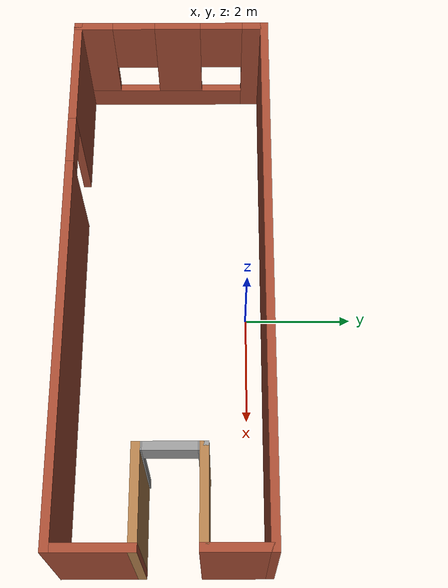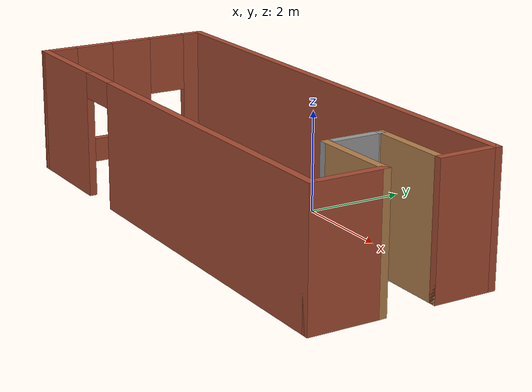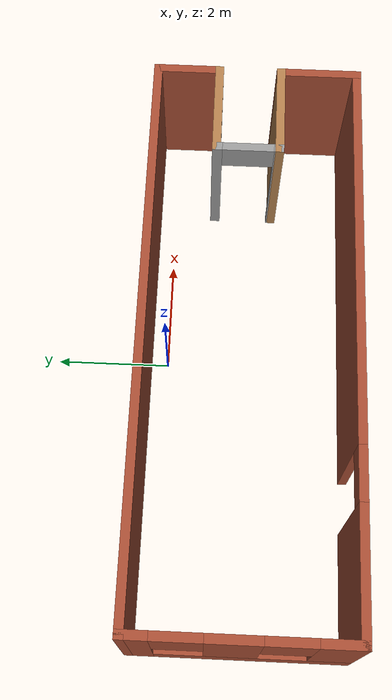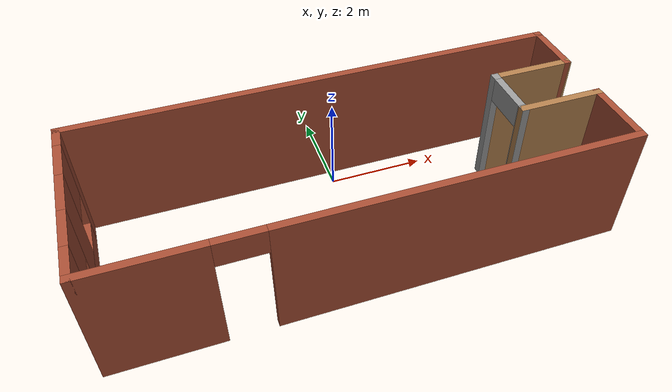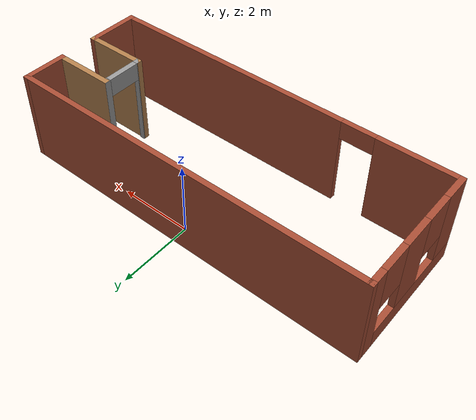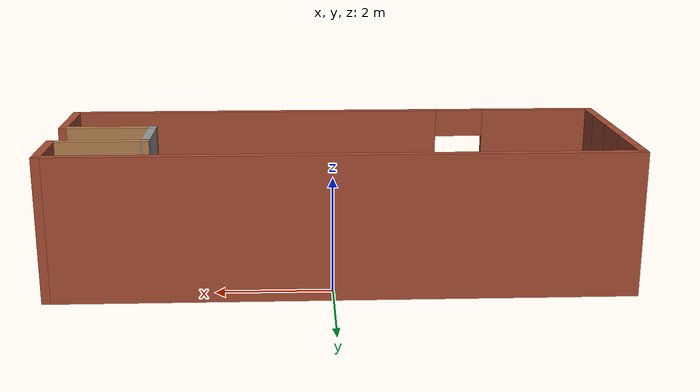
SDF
<?xml version='1.0'?>
<sdf version='1.7'>
  <model name='Untitled'>
    <pose>-0.155 -1.405 0 0 -0 0</pose>
    <link name='Wall_0'>
      <pose>-0 -1.775 0 0 -0 0</pose>
      <visual name='Wall_0_Visual_0'>
        <pose>-3.92104 0 1.25 0 -0 0</pose>
        <geometry>
          <box>
            <size>2.15792 0.15 2.5</size>
          </box>
        </geometry>
        <material>
          <script>
            <uri>file://media/materials/scripts/gazebo.material</uri>
            <name>Gazebo/Bricks</name>
          </script>
          <ambient>0.996078 0.47451 0.0196078 1</ambient>
        </material>
        <meta>
          <layer>0</layer>
        </meta>
      </visual>
      <collision name='Wall_0_Collision_0'>
        <geometry>
          <box>
            <size>2.15792 0.15 2.5</size>
          </box>
        </geometry>
        <pose>-3.92104 0 1.25 0 -0 0</pose>
      </collision>
      <visual name='Wall_0_Visual_1'>
        <pose>1.52896 0 1.25 0 -0 0</pose>
        <geometry>
          <box>
            <size>6.94208 0.15 2.5</size>
          </box>
        </geometry>
        <material>
          <script>
            <uri>file://media/materials/scripts/gazebo.material</uri>
            <name>Gazebo/Bricks</name>
          </script>
          <ambient>0.996078 0.47451 0.0196078 1</ambient>
        </material>
        <meta>
          <layer>0</layer>
        </meta>
      </visual>
      <collision name='Wall_0_Collision_1'>
        <geometry>
          <box>
            <size>6.94208 0.15 2.5</size>
          </box>
        </geometry>
        <pose>1.52896 0 1.25 0 -0 0</pose>
      </collision>
      <visual name='Wall_0_Visual_2'>
        <pose>-2.39208 0 2.25 0 -0 0</pose>
        <geometry>
          <box>
            <size>0.9 0.15 0.5</size>
          </box>
        </geometry>
        <material>
          <script>
            <uri>file://media/materials/scripts/gazebo.material</uri>
            <name>Gazebo/Bricks</name>
          </script>
          <ambient>0.996078 0.47451 0.0196078 1</ambient>
        </material>
        <meta>
          <layer>0</layer>
        </meta>
      </visual>
      <collision name='Wall_0_Collision_2'>
        <geometry>
          <box>
            <size>0.9 0.15 0.5</size>
          </box>
        </geometry>
        <pose>-2.39208 0 2.25 0 -0 0</pose>
      </collision>
    </link>
    <link name='Wall_1'>
      <collision name='Wall_1_Collision'>
        <geometry>
          <box>
            <size>1.5 0.15 2.5</size>
          </box>
        </geometry>
        <pose>0 0 1.25 0 -0 0</pose>
      </collision>
      <visual name='Wall_1_Visual'>
        <pose>0 0 1.25 0 -0 0</pose>
        <geometry>
          <box>
            <size>1.5 0.15 2.5</size>
          </box>
        </geometry>
        <material>
          <script>
            <uri>file://media/materials/scripts/gazebo.material</uri>
            <name>Gazebo/Bricks</name>
          </script>
          <ambient>1 1 1 1</ambient>
        </material>
        <meta>
          <layer>0</layer>
        </meta>
      </visual>
      <pose>4.925 -1.1 0 0 -0 1.5708</pose>
    </link>
    <link name='Wall_2'>
      <collision name='Wall_2_Collision'>
        <geometry>
          <box>
            <size>1.75 0.15 2.5</size>
          </box>
        </geometry>
        <pose>0 0 1.25 0 -0 0</pose>
      </collision>
      <visual name='Wall_2_Visual'>
        <pose>0 0 1.25 0 -0 0</pose>
        <geometry>
          <box>
            <size>1.75 0.15 2.5</size>
          </box>
        </geometry>
        <material>
          <script>
            <uri>file://media/materials/scripts/gazebo.material</uri>
            <name>Gazebo/Wood</name>
          </script>
          <ambient>1 1 1 1</ambient>
        </material>
        <meta>
          <layer>0</layer>
        </meta>
      </visual>
      <pose>4.125 -0.425 0 0 -0 3.14159</pose>
    </link>
    <link name='Wall_3'>
      <pose>3.325 0.125 0 0 -0 1.5708</pose>
      <visual name='Wall_3_Visual_0'>
        <pose>-0.53837 0 1.25 0 -0 0</pose>
        <geometry>
          <box>
            <size>0.173261 0.15 2.5</size>
          </box>
        </geometry>
        <material>
          <script>
            <uri>file://media/materials/scripts/gazebo.material</uri>
            <name>Gazebo/Grey</name>
          </script>
          <ambient>1 1 1 1</ambient>
        </material>
        <meta>
          <layer>0</layer>
        </meta>
      </visual>
      <collision name='Wall_3_Collision_0'>
        <geometry>
          <box>
            <size>0.173261 0.15 2.5</size>
          </box>
        </geometry>
        <pose>-0.53837 0 1.25 0 -0 0</pose>
      </collision>
      <visual name='Wall_3_Visual_1'>
        <pose>0.53663 0 1.25 0 -0 0</pose>
        <geometry>
          <box>
            <size>0.176739 0.15 2.5</size>
          </box>
        </geometry>
        <material>
          <script>
            <uri>file://media/materials/scripts/gazebo.material</uri>
            <name>Gazebo/Grey</name>
          </script>
          <ambient>1 1 1 1</ambient>
        </material>
        <meta>
          <layer>0</layer>
        </meta>
      </visual>
      <collision name='Wall_3_Collision_1'>
        <geometry>
          <box>
            <size>0.176739 0.15 2.5</size>
          </box>
        </geometry>
        <pose>0.53663 0 1.25 0 -0 0</pose>
      </collision>
      <visual name='Wall_3_Visual_2'>
        <pose>-0.001739 0 2.25 0 -0 0</pose>
        <geometry>
          <box>
            <size>0.9 0.15 0.5</size>
          </box>
        </geometry>
        <material>
          <script>
            <uri>file://media/materials/scripts/gazebo.material</uri>
            <name>Gazebo/Grey</name>
          </script>
          <ambient>1 1 1 1</ambient>
        </material>
        <meta>
          <layer>0</layer>
        </meta>
      </visual>
      <collision name='Wall_3_Collision_2'>
        <geometry>
          <box>
            <size>0.9 0.15 0.5</size>
          </box>
        </geometry>
        <pose>-0.001739 0 2.25 0 -0 0</pose>
      </collision>
    </link>
    <link name='Wall_4'>
      <collision name='Wall_4_Collision'>
        <geometry>
          <box>
            <size>1.75 0.15 2.5</size>
          </box>
        </geometry>
        <pose>0 0 1.25 0 -0 0</pose>
      </collision>
      <visual name='Wall_4_Visual'>
        <pose>0 0 1.25 0 -0 0</pose>
        <geometry>
          <box>
            <size>1.75 0.15 2.5</size>
          </box>
        </geometry>
        <material>
          <script>
            <uri>file://media/materials/scripts/gazebo.material</uri>
            <name>Gazebo/Wood</name>
          </script>
          <ambient>1 1 1 1</ambient>
        </material>
        <meta>
          <layer>0</layer>
        </meta>
      </visual>
      <pose>4.125 0.675 0 0 -0 0</pose>
    </link>
    <link name='Wall_5'>
      <collision name='Wall_5_Collision'>
        <geometry>
          <box>
            <size>1.25 0.15 2.5</size>
          </box>
        </geometry>
        <pose>0 0 1.25 0 -0 0</pose>
      </collision>
      <visual name='Wall_5_Visual'>
        <pose>0 0 1.25 0 -0 0</pose>
        <geometry>
          <box>
            <size>1.25 0.15 2.5</size>
          </box>
        </geometry>
        <material>
          <script>
            <uri>file://media/materials/scripts/gazebo.material</uri>
            <name>Gazebo/Bricks</name>
          </script>
          <ambient>1 1 1 1</ambient>
        </material>
        <meta>
          <layer>0</layer>
        </meta>
      </visual>
      <pose>4.925 1.225 0 0 -0 1.5708</pose>
    </link>
    <link name='Wall_6'>
      <collision name='Wall_6_Collision'>
        <geometry>
          <box>
            <size>10 0.15 2.5</size>
          </box>
        </geometry>
        <pose>0 0 1.25 0 -0 0</pose>
      </collision>
      <visual name='Wall_6_Visual'>
        <pose>0 0 1.25 0 -0 0</pose>
        <geometry>
          <box>
            <size>10 0.15 2.5</size>
          </box>
        </geometry>
        <material>
          <script>
            <uri>file://media/materials/scripts/gazebo.material</uri>
            <name>Gazebo/Bricks</name>
          </script>
          <ambient>1 1 1 1</ambient>
        </material>
        <meta>
          <layer>0</layer>
        </meta>
      </visual>
      <pose>-0 1.775 0 0 -0 3.14159</pose>
    </link>
    <link name='Wall_7'>
      <pose>-4.925 -0 0 0 -0 -1.5708</pose>
      <visual name='Wall_7_Visual_0'>
        <pose>-1.60087 0 1.25 0 -0 0</pose>
        <geometry>
          <box>
            <size>0.498269 0.15 2.5</size>
          </box>
        </geometry>
        <material>
          <script>
            <uri>file://media/materials/scripts/gazebo.material</uri>
            <name>Gazebo/Bricks</name>
          </script>
          <ambient>1 1 1 1</ambient>
        </material>
        <meta>
          <layer>0</layer>
        </meta>
      </visual>
      <collision name='Wall_7_Collision_0'>
        <geometry>
          <box>
            <size>0.498269 0.15 2.5</size>
          </box>
        </geometry>
        <pose>-1.60087 0 1.25 0 -0 0</pose>
      </collision>
      <visual name='Wall_7_Visual_1'>
        <pose>0.249134 0 0.25 0 -0 0</pose>
        <geometry>
          <box>
            <size>3.20173 0.15 0.5</size>
          </box>
        </geometry>
        <material>
          <script>
            <uri>file://media/materials/scripts/gazebo.material</uri>
            <name>Gazebo/Bricks</name>
          </script>
          <ambient>1 1 1 1</ambient>
        </material>
        <meta>
          <layer>0</layer>
        </meta>
      </visual>
      <collision name='Wall_7_Collision_1'>
        <geometry>
          <box>
            <size>3.20173 0.15 0.5</size>
          </box>
        </geometry>
        <pose>0.249134 0 0.25 0 -0 0</pose>
      </collision>
      <visual name='Wall_7_Visual_2'>
        <pose>-0.116685 0 1.5 0 -0 0</pose>
        <geometry>
          <box>
            <size>0.870091 0.15 2</size>
          </box>
        </geometry>
        <material>
          <script>
            <uri>file://media/materials/scripts/gazebo.material</uri>
            <name>Gazebo/Bricks</name>
          </script>
          <ambient>1 1 1 1</ambient>
        </material>
        <meta>
          <layer>0</layer>
        </meta>
      </visual>
      <collision name='Wall_7_Collision_2'>
        <geometry>
          <box>
            <size>0.870091 0.15 2</size>
          </box>
        </geometry>
        <pose>-0.116685 0 1.5 0 -0 0</pose>
      </collision>
      <visual name='Wall_7_Visual_3'>
        <pose>1.48418 0 1.5 0 -0 0</pose>
        <geometry>
          <box>
            <size>0.73164 0.15 2</size>
          </box>
        </geometry>
        <material>
          <script>
            <uri>file://media/materials/scripts/gazebo.material</uri>
            <name>Gazebo/Bricks</name>
          </script>
          <ambient>1 1 1 1</ambient>
        </material>
        <meta>
          <layer>0</layer>
        </meta>
      </visual>
      <collision name='Wall_7_Collision_3'>
        <geometry>
          <box>
            <size>0.73164 0.15 2</size>
          </box>
        </geometry>
        <pose>1.48418 0 1.5 0 -0 0</pose>
      </collision>
      <visual name='Wall_7_Visual_4'>
        <pose>-0.951731 0 1.9 0 -0 0</pose>
        <geometry>
          <box>
            <size>0.8 0.15 1.2</size>
          </box>
        </geometry>
        <material>
          <script>
            <uri>file://media/materials/scripts/gazebo.material</uri>
            <name>Gazebo/Bricks</name>
          </script>
          <ambient>1 1 1 1</ambient>
        </material>
        <meta>
          <layer>0</layer>
        </meta>
      </visual>
      <collision name='Wall_7_Collision_4'>
        <geometry>
          <box>
            <size>0.8 0.15 1.2</size>
          </box>
        </geometry>
        <pose>-0.951731 0 1.9 0 -0 0</pose>
      </collision>
      <visual name='Wall_7_Visual_5'>
        <pose>0.71836 0 1.9 0 -0 0</pose>
        <geometry>
          <box>
            <size>0.8 0.15 1.2</size>
          </box>
        </geometry>
        <material>
          <script>
            <uri>file://media/materials/scripts/gazebo.material</uri>
            <name>Gazebo/Bricks</name>
          </script>
          <ambient>1 1 1 1</ambient>
        </material>
        <meta>
          <layer>0</layer>
        </meta>
      </visual>
      <collision name='Wall_7_Collision_5'>
        <geometry>
          <box>
            <size>0.8 0.15 1.2</size>
          </box>
        </geometry>
        <pose>0.71836 0 1.9 0 -0 0</pose>
      </collision>
    </link>
    <static>1</static>
  </model>
</sdf>
